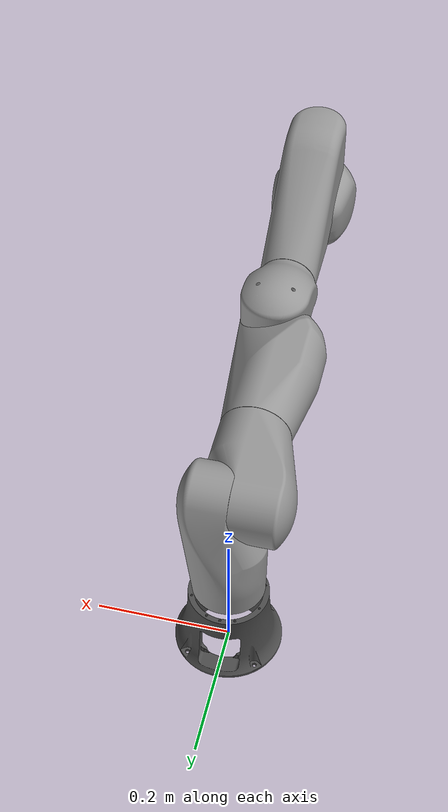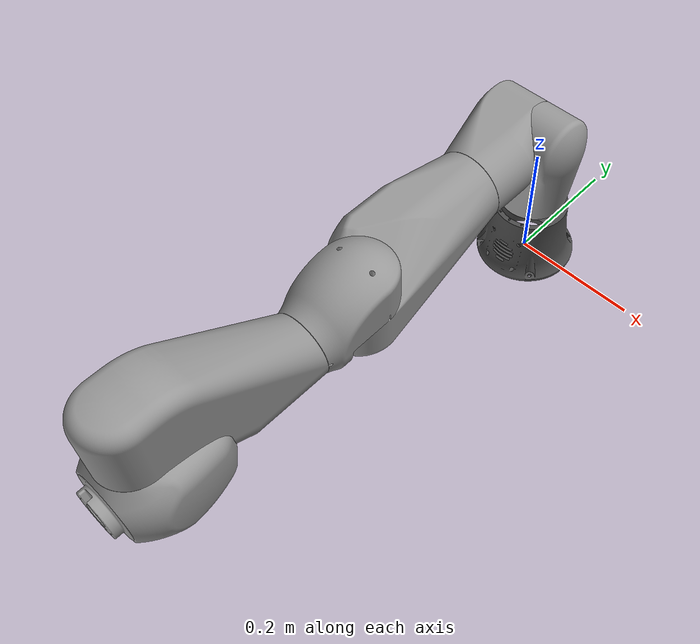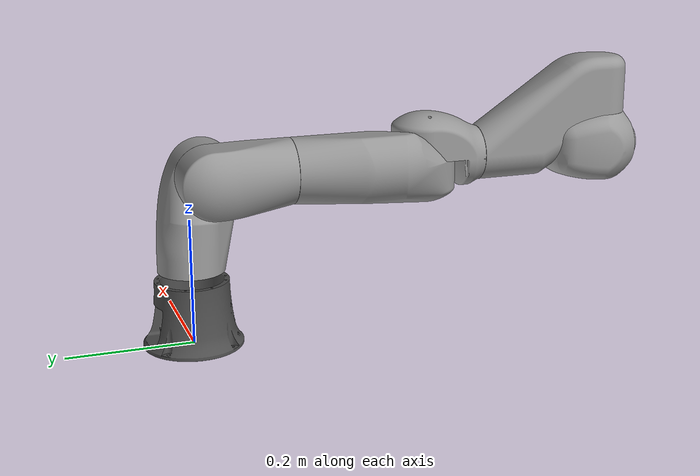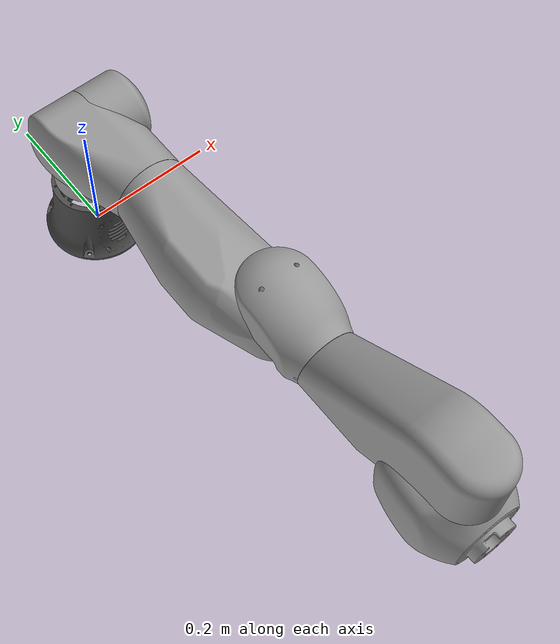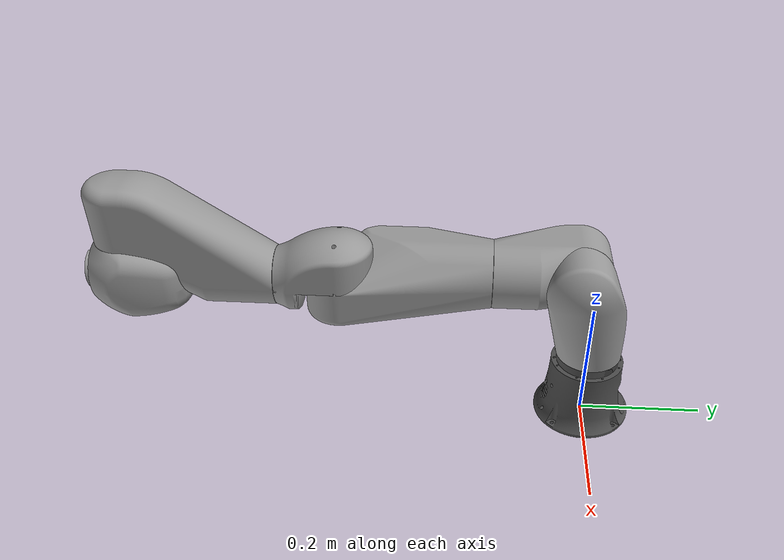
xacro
<?xml version="1.0"?>
<robot xmlns:xacro="http://ros.org/wiki/xacro" name="repair_arm">

    <xacro:include filename="$(find repair_urdf)/urdf/conversions.urdf.xacro" />
    <xacro:include filename="$(find repair_urdf)/urdf/materials.urdf.xacro" />

    <xacro:include filename="$(find repair_urdf)/urdf/repair_base.urdf.xacro" />
    <xacro:include filename="$(find repair_urdf)/urdf/repair_arm_macro.urdf.xacro" />

    <xacro:include filename="$(find repair_urdf)/urdf/kinematics_properties.urdf.xacro" />
    <xacro:include filename="$(find repair_urdf)/urdf/inertial_properties.urdf.xacro" />
    <xacro:include filename="$(find repair_urdf)/urdf/limits.urdf.xacro" />
    <xacro:include filename="$(find repair_urdf)/urdf/gazebo/xbot.gazebo.xacro" />

    <link name="world"/>

    <xacro:repair_base parent="world">
      <origin xyz="0 0 0" rpy="0 0 0"/>
    </xacro:repair_base>

    <xacro:repair_arm id="2"  rot="1"  parent="base_link">
      <origin xyz="0.0 0.0 0.14"
              rpy="0.0 0.0 0.0" />
    </xacro:repair_arm>

</robot>

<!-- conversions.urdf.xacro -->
<robot xmlns:xacro="http://ros.org/wiki/xacro">

<xacro:property name="mmTom" value="0.001" />
<xacro:property name="mm2Tom2" value="${0.001*0.001}" />
<xacro:property name="tonsToKg" value="1000.0" />

<xacro:property name="PI" value="3.14159265359" />
<xacro:property name="PI_2" value="1.57079632679" />

<xacro:property name="toRad" value="${PI/180.0}" />
<xacro:property name="toDeg" value="${180.0/PI}" />

</robot>

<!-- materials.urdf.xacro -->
<robot xmlns:xacro="http://ros.org/wiki/xacro">

<material name="grey">
  <color rgba="0.5 0.5 0.5 1"/>
</material>

<material name="dark_grey">
  <color rgba="0.3 0.3 0.3 1"/>
</material>

<material name="red">
  <color rgba="1.0 0.0 0.0 1"/>
</material>

<material name="green">
  <color rgba="0.0 1.0 0.0 1"/>
</material>

<material name="blue">
  <color rgba="0.13333333333333333 0.25882352941176473 0.7803921568627451 1.0" />
</material>

<material name="darkblue">
    <color rgba="0.0 0.3 0.9 1"/>
</material>

<material name="darkred">
    <color rgba="0.55 0.0 0.0 1"/>
</material>

<material name="dark">
    <color rgba="0.6 0.6 0.6 1"/>
</material>

<material name="wood">
  <color rgba="0.522 0.369 0.259 0.8"/>
</material>

<material name="silver_gray">
  <color rgba="0.8 0.8 0.8 0.8"/>
</material>

</robot>

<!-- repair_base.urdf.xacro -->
<robot xmlns:xacro="http://ros.org/wiki/xacro">

    <xacro:macro name="repair_base" params="parent *origin">
        <!-- base -->
        <link name="base_link">
            <inertial>
                <origin xyz="${Base_x} ${Base_y} ${Base_z}" />
                <mass value="${Base_mass}" />
                <inertia ixx="${Base_xx}" ixy="${Base_xy}" ixz="${Base_xz}" iyy="${Base_yy}"
                    iyz="${Base_yz}" izz="${Base_zz}" />
            </inertial>

            <visual>
                <origin xyz="0.0 0.0 0.0" rpy="0.0 0.0 0.0" />
                <geometry>
                    <mesh filename="package://repair_urdf/meshes/mesh_base.stl"
                        scale="0.001 0.001 0.001" />
                </geometry>
                <material name="dark_grey" />
            </visual>

            <collision>
                <origin xyz="0.0 0.0 0.0" rpy="0.0 0.0 0.0" />
                <geometry>
                    <mesh filename="package://repair_urdf/meshes/simplified/mesh_base.stl"
                        scale="0.001 0.001 0.001" />
                </geometry>
            </collision>
        </link>
        <!-- base -->

        <joint name="base_joint" type="fixed">
            <parent link="${parent}" />
            <child link="base_link" />
            <xacro:insert_block name="origin" />
        </joint>

    </xacro:macro>

</robot>

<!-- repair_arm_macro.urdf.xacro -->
<robot xmlns:xacro="http://ros.org/wiki/xacro">

<!-- macro for generating the urdf associated with a single arm of the RePair platform -->
<!-- id: specifies the id of the arm (e.g. 0 for left arm and 1 for right) -->
<!-- base_link: name of base link a the single arm -->
<!-- is_sliding_wrist: whether to add a sliding joint along the wrist second d.o.f.
    (true -> yes), everything else -> no. This is used to generate the URDF for the optimization.  -->
<!-- gen_coll: whether to add the approximate collision  model of the platform -->
<!-- use_updated_wrist: visual parameter. if true, we load the latest meshes (which are adapted to the
results of the optimization), otherwise we go with the old ones (generated for a spherical wrist) -->

    <xacro:macro name="repair_arm" params="id rot parent *origin">

        <xacro:property name="limit_index" value="0" />

        <xacro:if value="${rot == -1}">
            <xacro:property name="limit_index" value="1" />
        </xacro:if>

        <link name="arm_${id}_1">
            <inertial>
                <origin xyz="${Shoulder_1_x} ${rot*Shoulder_1_y} ${Shoulder_1_z}" />
                <mass value="${Shoulder_1_mass}" />
                <inertia ixx="${Shoulder_1_xx}" ixy="${rot*Shoulder_1_xy}" ixz="${Shoulder_1_xz}"
                    iyy="${Shoulder_1_yy}" iyz="${rot*Shoulder_1_yz}" izz="${Shoulder_1_zz}" />
                </inertial>

            <visual>
                <geometry>
                    <mesh filename="package://repair_urdf/meshes/mesh_sh-pitch.stl" scale="0.001 ${rot*0.001} 0.001"/>
                </geometry>
                <material name="dark"/>
            </visual>

            <collision>
                <geometry>
                    <mesh filename="package://repair_urdf/meshes/simplified/mesh_sh-pitch.stl" scale="0.001 ${rot*0.001} 0.001"/>
                </geometry>
            </collision>
        </link>

        <link name="arm_${id}_2">
            <inertial>
                <origin xyz="${Shoulder_2_x} ${rot*Shoulder_2_y} ${Shoulder_2_z}" />
                <mass value="${Shoulder_2_mass}" />
                <inertia ixx="${Shoulder_2_xx}" ixy="${rot*Shoulder_2_xy}" ixz="${Shoulder_2_xz}"
                    iyy="${Shoulder_2_yy}" iyz="${rot*Shoulder_2_yz}" izz="${Shoulder_2_zz}" />
                </inertial>

            <visual>
                <geometry>
                    <mesh filename="package://repair_urdf/meshes/mesh_sh-roll.stl" scale="0.001 ${rot*0.001} 0.001"/>
                </geometry>
                <material name="dark"/>
            </visual>

            <collision>
                <geometry>
                    <mesh filename="package://repair_urdf/meshes/simplified/mesh_sh-roll.stl" scale="0.001 ${rot*0.001} 0.001"/>
                </geometry>
            </collision>
        </link>

        <link name="arm_${id}_3">
            <inertial>
                <origin xyz="${Shoulder_3_x} ${rot*Shoulder_3_y} ${Shoulder_3_z}" />
                <mass value="${Shoulder_3_mass}" />
                <inertia ixx="${Shoulder_3_xx}" ixy="${rot*Shoulder_3_xy}" ixz="${Shoulder_3_xz}"
                    iyy="${Shoulder_3_yy}" iyz="${rot*Shoulder_3_yz}" izz="${Shoulder_3_zz}" />
                </inertial>

            <visual>
                <geometry>
                    <mesh filename="package://repair_urdf/meshes/mesh_sh-yaw.stl" scale="0.001 ${rot*0.001} 0.001"/>
                </geometry>
                <material name="dark"/>
            </visual>

            <collision>
                <geometry>
                    <mesh filename="package://repair_urdf/meshes/simplified/mesh_sh-yaw.stl" scale="0.001 ${rot*0.001} 0.001"/>
                </geometry>
            </collision>
        </link>

        <link name="arm_${id}_4">
            <inertial>
                <origin xyz="${Elbow_x} ${rot*Elbow_y} ${Elbow_z}" />
                <mass value="${Elbow_mass}" />
                <inertia ixx="${Elbow_xx}" ixy="${rot*Elbow_xy}" ixz="${Elbow_xz}"
                    iyy="${Elbow_yy}" iyz="${rot*Elbow_yz}" izz="${Elbow_zz}" />
                </inertial>

            <visual>
                <geometry>
                    <mesh filename="package://repair_urdf/meshes/mesh_elbow.stl" scale="0.001 ${rot*0.001} 0.001"/>
                </geometry>
                <material name="dark"/>
            </visual>

            <collision>
                <geometry>
                    <mesh filename="package://repair_urdf/meshes/simplified/mesh_elbow.stl" scale="0.001 ${rot*0.001} 0.001"/>
                </geometry>
            </collision>
        </link>

        <link name="arm_${id}_5">
            <inertial>
                <origin xyz="${Forearm_x} ${rot*Forearm_y} ${Forearm_z}" />
                <mass value="${Forearm_mass}" />
                <inertia ixx="${Forearm_xx}" ixy="${rot*Forearm_xy}" ixz="${Forearm_xz}"
                    iyy="${Forearm_yy}" iyz="${rot*Forearm_yz}" izz="${Forearm_zz}" />
                </inertial>

            <visual>
                <geometry>
                    <mesh filename="package://repair_urdf/meshes/mesh_forearm-yaw.stl" scale="0.001 ${rot*0.001} 0.001"/>
                </geometry>
                <material name="dark"/>
            </visual>

            <collision>
                <geometry>
                    <mesh filename="package://repair_urdf/meshes/simplified/mesh_forearm-yaw.stl" scale="0.001 ${rot*0.001} 0.001"/>
                </geometry>
            </collision>
        </link>

        <link name="arm_${id}_6">
            <inertial>
                <origin xyz="${Wrist_1_x} ${rot*Wrist_1_y} ${Wrist_1_z}" />
                <mass value="${Wrist_1_mass}" />
                <inertia ixx="${Wrist_1_xx}" ixy="${rot*Wrist_1_xy}" ixz="${Wrist_1_xz}"
                    iyy="${Wrist_1_yy}" iyz="${rot*Wrist_1_yz}" izz="${Wrist_1_zz}" />
                </inertial>

            <visual>
                <geometry>
                    <mesh filename="package://repair_urdf/meshes/mesh_wrist-pitch.stl" scale="0.001 ${rot*0.001} 0.001"/>
                </geometry>
                <material name="dark"/>
            </visual>

            <collision>
                <geometry>
                    <mesh filename="package://repair_urdf/meshes/simplified/mesh_wrist-pitch.stl" scale="0.001 ${rot*0.001} 0.001"/>
                </geometry>
            </collision>
        </link>

        <link name="arm_${id}_7">
            <inertial>
                <origin xyz="${Wrist_2_x} ${rot*Wrist_2_y} ${Wrist_2_z}" />
                <mass value="${Wrist_2_mass}" />
                <inertia ixx="${Wrist_2_xx}" ixy="${rot*Wrist_2_xy}" ixz="${Wrist_2_xz}"
                    iyy="${Wrist_2_yy}" iyz="${rot*Wrist_2_yz}" izz="${Wrist_2_zz}" />
            </inertial>

            <visual>
                <geometry>
                    <mesh filename="package://repair_urdf/meshes/mesh_wrist-roll.stl" scale="0.001 ${rot*0.001} 0.001"/>
                </geometry>
                <material name="dark"/>
            </visual>

            <collision>
                <geometry>
                    <mesh filename="package://repair_urdf/meshes/simplified/mesh_wrist-roll.stl" scale="0.001 ${rot*0.001} 0.001"/>
                </geometry>
            </collision>
        </link>

        <link name="arm_${id}_tcp">
            <inertial>
                <origin xyz="0.0 0.05 0.1" />
                <mass value="0.5" />
                <inertia ixx="0.001" ixy="0.0" ixz="0.0" iyy="0.001" iyz="0.0" izz="0.001" />
            </inertial>
        </link>
        <!-- JOINTS -->

        <!-- shoulder pitch -->
        <joint name="j_arm_${id}_1" type="revolute">
            <parent link="${parent}" />
            <child link="arm_${id}_1" />
            <axis xyz="0 0 1" />
            <xacro:insert_block name="origin" />
            <limit lower="${j_arm_1_lower[limit_index]}" upper="${j_arm_1_upper[limit_index]}"
            effort="${j_arm_1_torque[0]}" velocity="${j_arm_1_velocity[0]}" />
        </joint>
        <!-- shoulder pitch -->

        <!-- shoulder yaw -->
        <joint name="j_arm_${id}_2" type="revolute">
            <parent link="arm_${id}_1" />
            <child link="arm_${id}_2" />
            <origin xyz="${Shoulder_2_Ox} ${rot*Shoulder_2_Oy} ${Shoulder_2_Oz}"
            rpy="${rot*Shoulder_2_roll} ${Shoulder_2_pitch} ${Shoulder_2_yaw}" />
            <axis xyz="0 0 1" />
            <limit lower="${j_arm_2_lower[limit_index]}" upper="${j_arm_2_upper[limit_index]}"
            effort="${j_arm_2_torque[0]}" velocity="${j_arm_2_velocity[0]}" />
        </joint>
        <!-- shoulder yaw -->

        <!-- shoulder yaw -->
        <joint name="j_arm_${id}_3" type="revolute">
            <parent link="arm_${id}_2" />
            <child link="arm_${id}_3" />
            <origin xyz="${Shoulder_3_Ox} ${rot*Shoulder_3_Oy} ${Shoulder_3_Oz}"
            rpy="${rot*Shoulder_3_roll} ${Shoulder_3_pitch} ${Shoulder_3_yaw}" />
            <axis xyz="0 0 -1" />
            <limit lower="${j_arm_3_lower[limit_index]}" upper="${j_arm_3_upper[limit_index]}"
            effort="${j_arm_3_torque[0]}" velocity="${j_arm_3_velocity[0]}" />
        </joint>
        <!-- shoulder yaw -->

        <!-- elbow -->
        <joint name="j_arm_${id}_4" type="revolute">
            <parent link="arm_${id}_3" />
            <child link="arm_${id}_4" />
            <origin xyz="${Elbow_1_Ox} ${rot*Elbow_1_Oy} ${Elbow_1_Oz}"
            rpy="${rot*Elbow_1_roll} ${Elbow_1_pitch} ${Elbow_1_yaw}" />
            <axis xyz="0 0 1" />
            <limit lower="${j_arm_4_lower[limit_index]}" upper="${j_arm_4_upper[limit_index]}"
            effort="${j_arm_4_torque[0]}" velocity="${j_arm_4_velocity[0]}" />
        </joint>
        <!-- elbow -->

        <!-- forearm yaw -->
        <joint name="j_arm_${id}_5" type="revolute">
            <parent link="arm_${id}_4" />
            <child link="arm_${id}_5" />
            <origin xyz="${Forearm_1_Ox} ${rot*Forearm_1_Oy} ${Forearm_1_Oz}"
            rpy="${rot*Forearm_1_roll} ${Forearm_1_pitch} ${Forearm_1_yaw}" />
            <axis xyz="0 0 -1" />
            <limit lower="${j_arm_5_lower[limit_index]}" upper="${j_arm_5_upper[limit_index]}"
            effort="${j_arm_5_torque[0]}" velocity="${j_arm_5_velocity[0]}" />
        </joint>
        <!-- forearm yaw -->

        <!-- wrist pitch-->
        <joint name="j_arm_${id}_6" type="revolute">
            <parent link="arm_${id}_5" />
            <child link="arm_${id}_6" />
            <origin xyz="${Wrist_1_Ox} ${rot*Wrist_1_Oy} ${Wrist_1_Oz}"
            rpy="${rot*Wrist_1_roll} ${Wrist_1_pitch} ${Wrist_1_yaw}" />
            <axis xyz="0 0 1" />
            <limit lower="${j_arm_6_lower[limit_index]}" upper="${j_arm_6_upper[limit_index]}"
            effort="${j_arm_6_torque[0]}" velocity="${j_arm_6_velocity[0]}" />
        </joint>
        <!-- wrist pitch-->

        <!-- wrist roll-->
        <joint name="j_arm_${id}_7" type="revolute">
            <parent link="arm_${id}_6" />
            <child link="arm_${id}_7" />
            <origin xyz="${Wrist_2_Ox} ${rot*Wrist_2_Oy} ${Wrist_2_Oz}"
            rpy="${rot*Wrist_2_roll} ${Wrist_2_pitch} ${Wrist_2_yaw}" />
            <axis xyz="0 0 1" />
            <limit lower="${j_arm_7_lower[limit_index]}" upper="${j_arm_7_upper[limit_index]}"
            effort="${j_arm_7_torque[0]}" velocity="${j_arm_7_velocity[0]}" />
        </joint>
        <!-- /wrist roll-->

        <!-- virtual tip-->
        <joint name="j_tcp_${id}" type="fixed">
            <parent link="arm_${id}_7" />
            <child link="arm_${id}_tcp" />
            <origin xyz="${No_end_ft_Ox} ${rot*No_end_ft_Oy} ${No_end_ft_Oz}"
            rpy="${rot*No_end_ft_roll} ${No_end_ft_pitch} ${No_end_ft_yaw}" />
        </joint>
        <!-- virtual tip-->

    </xacro:macro>

</robot>

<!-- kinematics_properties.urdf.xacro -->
<robot  xmlns:xacro="http://ros.org/wiki/xacro">

    <xacro:property name="Table_x" value="0.0" />
    <xacro:property name="Table_y" value="0.0" />
    <xacro:property name="Table_z" value="0.0" /> <!-- w.r.t world  -->
    <xacro:property name="table_top_thickness" value="0.05"/>
    <xacro:property name="table_height" value="1.0"/>

    <xacro:property name="Cage_x" value="1.0" />
    <xacro:property name="Cage_y" value="2.5" />
    <xacro:property name="Cage_z" value="1.0"/> <!-- w.r.t table  -->
    <xacro:property name="Cage_leg_radius" value="0.02" />

    <xacro:property name="Cage_sliding_guide_x" value="0.0"/> <!-- w.r.t world  -->
    <xacro:property name="Cage_sliding_guide_y" value="0.0"/> <!-- w.r.t world  -->
    <xacro:property name="Cage_sliding_guide_z" value="0.0"/> <!-- w.r.t world  -->

    <xacro:property name="Cage_sliding_guide_width" value="0.4"/>

    <xacro:property name="Torso_Ox" value=" 0.0 "/>
    <xacro:property name="Torso_Oy" value=" 0.0 "/>
    <xacro:property name="Torso_Oz" value=" 0.0 "/>
    <xacro:property name="Torso_roll" value=" ${PI/2} "/>
    <xacro:property name="Torso_pitch" value=" 0.0 "/>
    <xacro:property name="Torso_yaw" value=" ${PI/2}"/>

    <!-- Origin -->
    <xacro:property name="Shoulder_1_Ox" value=" 0.0 "/>
    <xacro:property name="Shoulder_1_Oy" value="  -0.135150"/>
    <xacro:property name="Shoulder_1_Oz" value=" -0.242150 "/>
    <xacro:property name="Shoulder_1_roll" value=" ${PI/2} "/> <!-- ${PI/2}  -->
    <xacro:property name="Shoulder_1_pitch" value=" 0.0 "/>
    <xacro:property name="Shoulder_1_yaw" value=" 0.0 "/>

    <!-- Origin -->
    <xacro:property name="Shoulder_2_Ox" value=" -0.06"/>
    <xacro:property name="Shoulder_2_Oy" value=" -0.03 "/>
    <xacro:property name="Shoulder_2_Oz" value=" 0.1255 "/>
    <xacro:property name="Shoulder_2_roll" value=" 0.0"/>
    <xacro:property name="Shoulder_2_pitch" value=" ${-PI/2} "/>
    <xacro:property name="Shoulder_2_yaw" value=" 0.0 "/>

    <!-- Origin -->
    <xacro:property name="Shoulder_3_Ox" value=" 0.0 "/>
    <xacro:property name="Shoulder_3_Oy" value=" -0.073 "/>
    <xacro:property name="Shoulder_3_Oz" value=" -0.06015 "/>
    <xacro:property name="Shoulder_3_roll" value=" ${-PI/2}"/>
    <xacro:property name="Shoulder_3_pitch" value=" ${PI/2} "/>
    <xacro:property name="Shoulder_3_yaw" value=" 0.0 "/>

    <!-- Origin -->
    <xacro:property name="Elbow_1_Ox" value=" 0.0225 "/>
    <xacro:property name="Elbow_1_Oy" value=" -0.05015 "/>
    <xacro:property name="Elbow_1_Oz" value=" -0.292150 "/>
    <xacro:property name="Elbow_1_roll" value=" ${PI/2} "/>
    <xacro:property name="Elbow_1_pitch" value=" 0.0 "/>
    <xacro:property name="Elbow_1_yaw" value=" 0.0 "/>

    <!-- Origin -->
    <xacro:property name="Forearm_1_Ox" value=" 0.0 "/>
    <xacro:property name="Forearm_1_Oy" value=" -0.0725 "/>
    <xacro:property name="Forearm_1_Oz" value=" -0.05015 "/>
    <xacro:property name="Forearm_1_roll" value=" ${-PI/2} "/>
    <xacro:property name="Forearm_1_pitch" value=" 0.0 "/>
    <xacro:property name="Forearm_1_yaw" value=" 0.0 "/>

    <!-- Origin -->
    <xacro:property name="Wrist_1_Ox" value=" 0.0 "/>
    <xacro:property name="Wrist_1_Oy" value=" -0.05 "/>
    <xacro:property name="Wrist_1_Oz" value=" -0.2475 "/>
    <xacro:property name="Wrist_1_roll" value=" ${-PI/2} "/>
    <xacro:property name="Wrist_1_pitch" value=" 0.0 "/>
    <xacro:property name="Wrist_1_yaw" value=" 0.0 "/>

    <!-- Origin -->
    <xacro:property name="Wrist_2_Ox" value=" 0.00 "/>
    <xacro:property name="Wrist_2_Oy" value=" 0.062877 "/>
    <xacro:property name="Wrist_2_Oz" value=" 0.050 "/>
    <xacro:property name="Wrist_2_roll" value=" ${-PI/2} "/>
    <xacro:property name="Wrist_2_pitch" value=" 0.3316123 "/>
    <xacro:property name="Wrist_2_yaw" value=" 0.0 "/>

    <!-- END-EFFECTORS-->
    <!-- Origin -->
    <xacro:property name="No_end_ft_Ox" value=" 0.0 "/>
    <xacro:property name="No_end_ft_Oy" value=" 0.0 "/>
    <xacro:property name="No_end_ft_Oz" value=" 0.0 "/>
    <xacro:property name="No_end_ft_roll" value=" 0.0 "/>
    <xacro:property name="No_end_ft_pitch" value=" 0.0 "/>
    <xacro:property name="No_end_ft_yaw" value=" 0.0 "/>

    </robot>

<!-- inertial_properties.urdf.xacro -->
<robot  xmlns:xacro="http://ros.org/wiki/xacro">

    <!-- General Data -->
    <xacro:property name="link_width" value=" 0.100000 "/>
    <xacro:property name="link_visual" value=" 0.050000 "/>
    <xacro:property name="motors_radius" value=" 0.050000 "/>
    <xacro:property name="motors_length" value=" 0.100000 "/>
    <xacro:property name="motors_weight" value=" 1.500000 "/>

    <!-- Center of Mass -->
    <xacro:property name="Torso_x" value=" ${4.9776510e-01 *mmTom} "/>
    <xacro:property name="Torso_y" value=" ${-4.2604032e-01*mmTom} "/>
    <xacro:property name="Torso_z" value=" ${-1.6838189e+02 *mmTom} "/>
    <!-- Inertia -->
    <xacro:property name="Torso_xx" value=" ${1.1857829e+05 *mm2Tom2} "/>
    <xacro:property name="Torso_yy" value=" ${8.0733992e+04 *mm2Tom2} "/>
    <xacro:property name="Torso_zz" value=" ${5.4100212e+04 *mm2Tom2} "/>
    <xacro:property name="Torso_xy" value=" ${2.0401988e+01 *mm2Tom2} "/>
    <xacro:property name="Torso_xz" value=" ${1.2279511e+01 *mm2Tom2} "/>
    <xacro:property name="Torso_yz" value=" ${7.0011268e+00 *mm2Tom2}"/>
    <!-- Mass -->
    <xacro:property name="Torso_mass" value=" 8.7077745e+00 "/>

    <!-- Center of Mass -->
    <xacro:property name="Base_x" value=" ${2.0548930e-01 *mmTom} "/>
    <xacro:property name="Base_y" value=" ${-6.2095789e-01*mmTom} "/>
    <xacro:property name="Base_z" value=" ${7.7352002e+01 *mmTom} "/>
    <!-- Inertia -->
    <xacro:property name="Base_xx" value=" ${1.0002127e+04 *mm2Tom2} "/>
    <xacro:property name="Base_yy" value=" ${1.0728527e+04 *mm2Tom2} "/>
    <xacro:property name="Base_zz" value=" ${6.2156037e+03 *mm2Tom2} "/>
    <xacro:property name="Base_xy" value=" ${4.1468014e+01 *mm2Tom2} "/>
    <xacro:property name="Base_xz" value=" ${-5.1253649e+01*mm2Tom2} "/>
    <xacro:property name="Base_yz" value=" ${-1.2700723e+02 *mm2Tom2}"/>
    <!-- Mass -->
    <xacro:property name="Base_mass" value=" 2.7764953 "/>

    <!-- SHOULDER PITCH -->
    <!-- Center of Mass -->
    <xacro:property name="Shoulder_1_x" value=" ${1.0200651e+01 *mmTom} "/>
    <xacro:property name="Shoulder_1_y" value=" ${-2.1560998e+01 *mmTom} "/>
    <xacro:property name="Shoulder_1_z" value=" ${9.8767025e+01 *mmTom} "/>
    <!-- Inertia -->
    <xacro:property name="Shoulder_1_xx" value=" ${7.1929157e+03 *mm2Tom2}"/>
    <xacro:property name="Shoulder_1_yy" value=" ${9.4711610e+03 *mm2Tom2} "/>
    <xacro:property name="Shoulder_1_zz" value=" ${5.8530904e+03 *mm2Tom2}"/>
    <xacro:property name="Shoulder_1_xy" value=" ${7.8543184e+01 *mm2Tom2} "/>
    <xacro:property name="Shoulder_1_xz" value=" ${-3.9791236e+02 *mm2Tom2}"/>
    <xacro:property name="Shoulder_1_yz" value=" ${1.2857051e+03 *mm2Tom2}"/>
    <!-- Mass -->
    <xacro:property name="Shoulder_1_mass" value="2.347"/>

    <!-- SHOULDER ROLL -->
    <!-- Center of Mass -->
    <xacro:property name="Shoulder_2_x" value=" ${4.5955243e-02*mmTom} "/>
    <xacro:property name="Shoulder_2_y" value=" ${-4.4957128e+01*mmTom} "/>
    <xacro:property name="Shoulder_2_z" value=" ${-3.0791013e+01 *mmTom} "/>
    <!-- Inertia -->
    <xacro:property name="Shoulder_2_xx" value=" ${2.7927572e+03 *mm2Tom2}"/>
    <xacro:property name="Shoulder_2_yy" value=" ${1.9288488e+03 *mm2Tom2} "/>
    <xacro:property name="Shoulder_2_zz" value=" ${2.6633366e+03 *mm2Tom2}"/>
    <xacro:property name="Shoulder_2_xy" value=" ${-2.0135067e+00 *mm2Tom2} "/>
    <xacro:property name="Shoulder_2_xz" value=" ${-1.3644218e+00 *mm2Tom2}"/>
    <xacro:property name="Shoulder_2_yz" value=" ${-6.6693438e+02 *mm2Tom2}"/>
    <!-- Mass -->
    <xacro:property name="Shoulder_2_mass" value="0.76"/>

    <!-- SHOULDER YAW -->
    <!-- Center of Mass -->
    <xacro:property name="Shoulder_3_x" value=" ${5.0993150e+00 *mmTom} "/>
    <xacro:property name="Shoulder_3_y" value=" ${5.9986523e+00 *mmTom} "/>
    <xacro:property name="Shoulder_3_z" value=" ${-1.8011742e+02 *mmTom} "/>
    <!-- Inertia -->
    <xacro:property name="Shoulder_3_xx" value=" ${3.1298785e+04 *mm2Tom2}"/>
    <xacro:property name="Shoulder_3_yy" value=" ${3.1963501e+04 *mm2Tom2} "/>
    <xacro:property name="Shoulder_3_zz" value=" ${2.6332359e+03 *mm2Tom2}"/>
    <xacro:property name="Shoulder_3_xy" value=" ${-2.5158367e+02 *mm2Tom2} "/>
    <xacro:property name="Shoulder_3_xz" value=" ${2.3711270e+03 *mm2Tom2}"/>
    <xacro:property name="Shoulder_3_yz" value=" ${1.8728041e+03 *mm2Tom2}"/>
    <!-- Mass -->
    <xacro:property name="Shoulder_3_mass" value="3.34"/>

    <!-- ELBOW -->
    <!-- Center of Mass -->
    <xacro:property name="Elbow_x" value=" ${3.3322750e-03 *mmTom} "/>
    <xacro:property name="Elbow_y" value=" ${-3.3289421e+01 *mmTom} "/>
    <xacro:property name="Elbow_z" value=" ${-2.3682302e+01 *mmTom} "/>
    <!-- Inertia -->
    <xacro:property name="Elbow_xx" value=" ${1.6198328e+03 *mm2Tom2} "/>
    <xacro:property name="Elbow_yy" value=" ${1.2266731e+03 *mm2Tom2} "/>
    <xacro:property name="Elbow_zz" value=" ${1.6081346e+03 *mm2Tom2} "/>
    <xacro:property name="Elbow_xy" value=" ${-1.2642724e+00 *mm2Tom2} "/>
    <xacro:property name="Elbow_xz" value=" ${-1.1734799e+00 *mm2Tom2} "/>
    <xacro:property name="Elbow_yz" value=" ${-3.9531701e+02 *mm2Tom2} "/>
    <!-- Mass -->
    <xacro:property name="Elbow_mass" value="0.55"/>

    <!-- FOREARM -->
    <!-- Center of Mass -->
    <xacro:property name="Forearm_x" value=" ${9.4711044e-01 *mmTom} "/>
    <xacro:property name="Forearm_y" value=" ${-4.8009667e+01 *mmTom} "/>
    <xacro:property name="Forearm_z" value=" ${-1.4331833e+02 *mmTom} "/>
    <!-- Inertia -->
    <xacro:property name="Forearm_xx" value=" ${3.0333275e+04 *mm2Tom2}"/>
    <xacro:property name="Forearm_yy" value=" ${2.5195445e+04 *mm2Tom2}"/>
    <xacro:property name="Forearm_zz" value=" ${6.9975104e+03 *mm2Tom2}"/>
    <xacro:property name="Forearm_xy" value=" ${7.3729709e+01 *mm2Tom2} "/>
    <xacro:property name="Forearm_xz" value=" ${3.2427371e+01 *mm2Tom2} "/>
    <xacro:property name="Forearm_yz" value=" ${-9.5263763e+03 *mm2Tom2}"/>
    <!-- Mass -->
    <xacro:property name="Forearm_mass" value="2.825"/>

    <!-- WRITST PITCH -->
    <!-- Center of Mass -->
    <xacro:property name="Wrist_1_x" value=" ${6.8559302e-01 *mmTom} "/>
    <xacro:property name="Wrist_1_y" value=" ${-5.0299682e+00 *mmTom} "/>
    <xacro:property name="Wrist_1_z" value=" ${4.6682846e+01 *mmTom} "/>
    <!-- Inertia -->
    <xacro:property name="Wrist_1_xx" value=" ${4.2406037e+03 *mm2Tom2} "/>
    <xacro:property name="Wrist_1_yy" value=" ${2.9010806e+03 *mm2Tom2} "/>
    <xacro:property name="Wrist_1_zz" value=" ${4.4989008e+03 *mm2Tom2} "/>
    <xacro:property name="Wrist_1_xy" value=" ${-5.5692732e+01 *mm2Tom2} "/>
    <xacro:property name="Wrist_1_xz" value=" ${-9.0851982e+01 *mm2Tom2} "/>
    <xacro:property name="Wrist_1_yz" value=" ${-1.8560541e+02 *mm2Tom2} "/>
    <!-- Mass -->
    <xacro:property name="Wrist_1_mass" value="1.861"/>

    <!-- WRITST ROLL -->
    <!-- Center of Mass -->
    <xacro:property name="Wrist_2_x" value=" ${0.0000000e+00 *mmTom} "/>
    <xacro:property name="Wrist_2_y" value=" ${-1.0491951e+00 *mmTom} "/>
    <xacro:property name="Wrist_2_z" value=" ${-1.0307299e+01 *mmTom} "/>
    <!-- Inertia -->
    <xacro:property name="Wrist_2_xx" value=" ${6.1479333e+01 *mm2Tom2} "/>
    <xacro:property name="Wrist_2_yy" value=" ${6.4247521e+01 *mm2Tom2} "/>
    <xacro:property name="Wrist_2_zz" value=" ${1.1879744e+02 *mm2Tom2} "/>
    <xacro:property name="Wrist_2_xy" value=" ${-7.4023399e-05 *mm2Tom2} "/>
    <xacro:property name="Wrist_2_xz" value=" ${0.0000000e+00 *mm2Tom2} "/>
    <xacro:property name="Wrist_2_yz" value=" ${4.7786448e-01 *mm2Tom2} "/>
    <!-- Mass -->
    <xacro:property name="Wrist_2_mass" value="1.4163970e-01"/>

    </robot>

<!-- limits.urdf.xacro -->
<robot  xmlns:xacro="http://ros.org/wiki/xacro">

    <!-- Origin -->

    <xacro:property name="j_prismatic_lower" value="${[-2]}"/>
    <xacro:property name="j_torso_lower" value="${[-2.6]}"/>

    <xacro:property name="j_arm_1_lower" value="${[-2.6, -2.6]}"/>
    <xacro:property name="j_arm_2_lower" value="${[-0.1, -2.5]}"/>
    <xacro:property name="j_arm_3_lower" value="${[-2.6, -2.6]}"/>
    <xacro:property name="j_arm_4_lower" value="${[-0.8, -2.4]}"/>
    <xacro:property name="j_arm_5_lower" value="${[-2.8, -2.8]}"/>
    <xacro:property name="j_arm_6_lower" value="${[-2.8, -2.1]}"/>
    <xacro:property name="j_arm_7_lower" value="${[-2.8, -2.8]}"/>

    <xacro:property name="j_prismatic_upper" value="${[2]}"/>
    <xacro:property name="j_torso_upper" value="${[2.6]}"/>

    <xacro:property name="j_arm_1_upper" value="${[2.6, 2.6]}"/>
    <xacro:property name="j_arm_2_upper" value="${[2.5, 0.1]}"/>
    <xacro:property name="j_arm_3_upper" value="${[2.6, 2.6]}"/>
    <xacro:property name="j_arm_4_upper" value="${[2.4, 0.8]}"/>
    <xacro:property name="j_arm_5_upper" value="${[2.8, 2.8]}"/>
    <xacro:property name="j_arm_6_upper" value="${[2.1, 2.8]}"/>
    <xacro:property name="j_arm_7_upper" value="${[2.8, 2.8]}"/>

    <xacro:property name="j_prismatic_velocity" value="${[5]}"/>
    <xacro:property name="j_torso_velocity" value="${[3.86]}"/>

    <xacro:property name="j_arm_1_velocity" value="${[3.86]}"/>
    <xacro:property name="j_arm_2_velocity" value="${[3.86]}"/>
    <xacro:property name="j_arm_3_velocity" value="${[6.06]}"/>
    <xacro:property name="j_arm_4_velocity" value="${[6.06]}"/>
    <xacro:property name="j_arm_5_velocity" value="${[11.72]}"/>
    <xacro:property name="j_arm_6_velocity" value="${[11.72]}"/>
    <xacro:property name="j_arm_7_velocity" value="${[11.72]}"/>

    <xacro:property name="j_prismatic_torque" value="${[147]}"/>
    <xacro:property name="j_torso_torque" value="${[147.00]}"/>

    <xacro:property name="j_arm_1_torque" value="${[147.00]}"/>
    <xacro:property name="j_arm_2_torque" value="${[147.00]}"/>
    <xacro:property name="j_arm_3_torque" value="${[147.00]}"/>
    <xacro:property name="j_arm_4_torque" value="${[147.00]}"/>
    <xacro:property name="j_arm_5_torque" value="${[55.00]}"/>
    <xacro:property name="j_arm_6_torque" value="${[55.00]}"/>
    <xacro:property name="j_arm_7_torque" value="${[55.00]}"/>

    </robot>
